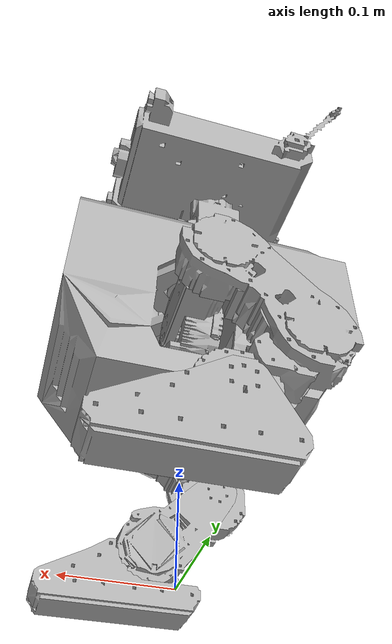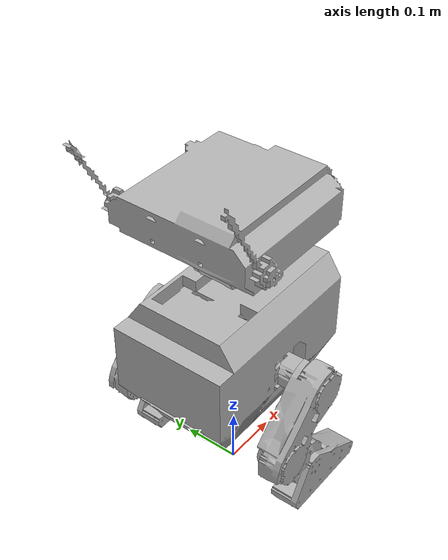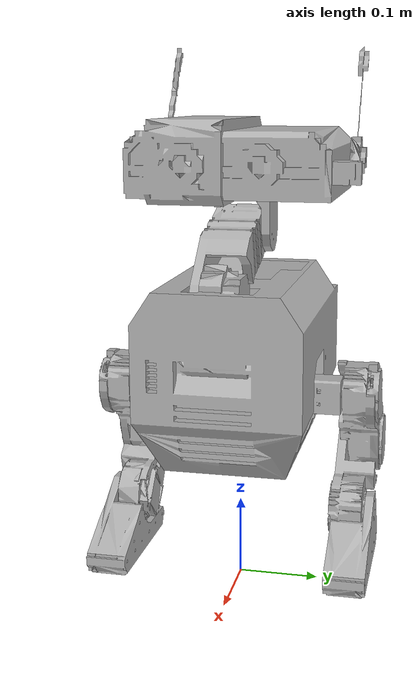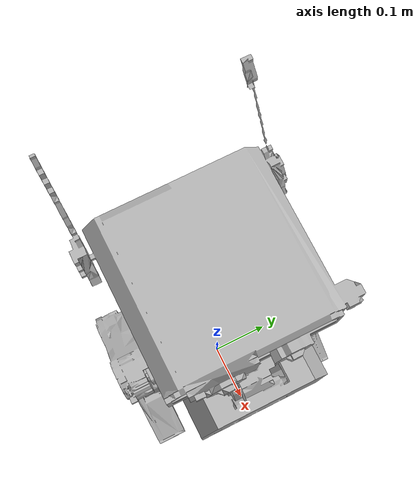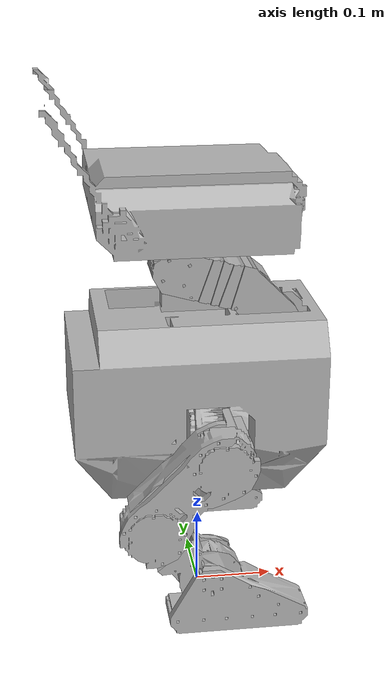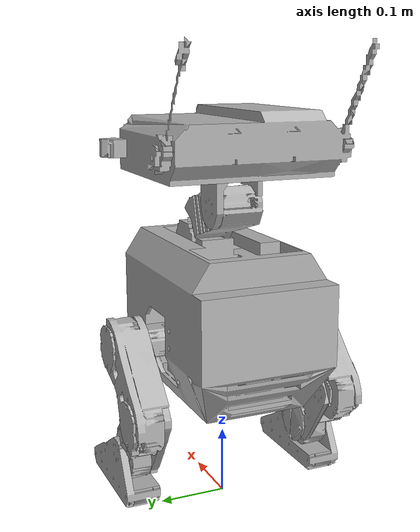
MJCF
<mujoco model="toto">
  <compiler angle="radian" meshdir="assets" autolimits="true" />

  <default>
    <default class="toto">
      <default class="visual">
        <geom group="2" type="mesh" density="0" material="silver" contype="0" conaffinity="0" />
      </default>
      <default class="collision">
        <geom type="capsule" rgba="1 0 0 .3" group="3" contype="1" conaffinity="1" />
      </default>
      <site group="5" rgba="1 0 0 1" />
    </default>
  </default>

  <asset>
    <material name="silver" rgba="0.7 0.7 0.7 1" />

    <mesh name="base_link_visual" file="base_link_visual.stl" />
    <mesh name="left_hip_yaw_link_visual" file="left_hip_yaw_link_visual.stl" />
    <mesh name="left_hip_roll_link_visual" file="left_hip_roll_link_visual.stl" />
    <mesh name="left_hip_pitch_link_visual" file="left_hip_pitch_link_visual.stl" />
    <mesh name="left_knee_pitch_link_visual" file="left_knee_pitch_link_visual.stl" />
    <mesh name="left_ankle_pitch_link_visual" file="left_ankle_pitch_link_visual.stl" />
    <mesh name="right_hip_yaw_link_visual" file="right_hip_yaw_link_visual.stl" />
    <mesh name="right_hip_roll_link_visual" file="right_hip_roll_link_visual.stl" />
    <mesh name="right_hip_pitch_link_visual" file="right_hip_pitch_link_visual.stl" />
    <mesh name="right_knee_pitch_link_visual" file="right_knee_pitch_link_visual.stl" />
    <mesh name="right_ankle_pitch_link_visual" file="right_ankle_pitch_link_visual.stl" />
    <mesh name="neck_2_link_visual" file="neck_2_link_visual.stl" />
    <mesh name="neck_1_link_visual" file="neck_1_link_visual.stl" />
    <mesh name="head_link_visual" file="head_link_visual.stl" />
    <material name="base_link_mat" rgba="0.7294 0.7412 0.7137 1" specular="0" />
    <material name="neck_2_link_mat" rgba="0.3333 0.3412 0.3255 1" specular="0" />
    <material name="neck_1_link_mat" rgba="0.7569 0.4902 0.0667 1" specular="0" />
    <material name="head_yaw_link_mat" rgba="0.7294 0.7412 0.7137 1" specular="0" />
    <material name="left_hip_yaw_link_mat" rgba="0.702 0.702 0.702 1" specular="0" />
    <material name="left_hip_roll_link_mat" rgba="0.7569 0.4902 0.0667 1" specular="0" />
    <material name="left_hip_pitch_link_mat" rgba="0.3333 0.3412 0.3255 1" specular="0" />
    <material name="left_knee_pitch_link_mat" rgba="0.7294 0.7412 0.7137 1" specular="0" />
    <material name="left_ankle_pitch_link_mat" rgba="0.3333 0.3412 0.3255 1" specular="0" />
    <material name="right_hip_yaw_link_mat" rgba="0.702 0.702 0.702 1" specular="0" />
    <material name="right_hip_roll_link_mat" rgba="0.7569 0.4902 0.0667 1" specular="0" />
    <material name="right_hip_pitch_link_mat" rgba="0.3333 0.3412 0.3255 1" specular="0" />
    <material name="right_knee_pitch_link_mat" rgba="0.7294 0.7412 0.7137 1" specular="0" />
    <material name="right_ankle_pitch_link_mat" rgba="0.3333 0.3412 0.3255 1" specular="0" />
  </asset>

  <worldbody>
    <!-- 添加地面和灯光 -->
    <light name="key_light" pos="-0 -3 4" dir="0 0.7 -1" diffuse="0.8 0.8 0.8" castshadow="true" />
    <light name="fill_light" pos="-3 2 3" dir="0.6 -0.4 -1" diffuse="0.35 0.35 0.35"
      castshadow="false" />
    <light name="spotlight" mode="targetbodycom" target="base_link" pos="0 -1 2" />

    <body name="base_link" pos="0 0 0.17" childclass="toto">
      <freejoint name="floating_base_joint" />
      <inertial pos="-0.00488 0 0.12124" mass="2.279" diaginertia="0.01381 0.04939 0.04675" />
      <geom class="visual" mesh="base_link_visual" quat="0.7071 0 0 0.7071" />
      <site name="imu" size="0.01" pos="-0.07834 0 0.0863" />

      <body name="neck_2_link" pos="0.09406 -0.0249 0.21124" euler="0 -0.5 0">
        <inertial pos="-0.05141 0 0.09253" mass="0.369" diaginertia="0.00081 0.00125 0.00066" />
        <geom class="visual" mesh="neck_2_link_visual" quat="0.7071 0 0 0.7071" />
        <body name="neck_1_link" pos="-0.0775 0.049 0.12134" euler="0 0.5 0">
          <inertial pos="-0.00024 0 0.05643" mass="0.336" diaginertia="0.00036 0.00032 0.00016" />
          <geom class="visual" mesh="neck_1_link_visual" quat="0.7071 0 0 0.7071" />
          <body name="head_yaw_link" pos="-0.00018 -0.02413 0.10083">
            <inertial pos="0.02149 0 -0.01691" mass="0.547" diaginertia="0.00271 0.00346 0.00563" />
            <geom class="visual" mesh="head_link_visual" quat="0.7071 0 0 0.7071" />
          </body>
        </body>
      </body>

      <body name="left_hip_yaw_link" pos="0.0109 0.04518 0.14309">
        <inertial pos="-0.01055 0 -0.05487" mass="0.397" diaginertia="0.00035 0.00031 0.00021" />
        <joint name="left_hip_yaw_link_joint" axis="0 0 1" range="-0.25 0.25" />
        <geom class="visual" mesh="left_hip_yaw_link_visual" quat="0.7071 0 0 0.7071" />
        <body name="left_hip_roll_link" pos="0.01284 0.00001 -0.05962">
          <inertial pos="-0.00656 0 -0.00065" mass="0.0263" diaginertia="0.00002 0.00001 0.00002" />
          <joint name="left_hip_roll_link_joint" axis="1 0 0" range="-0.52333 0.34889" />
          <geom class="visual" mesh="left_hip_roll_link_visual" quat="0.7071 0 0 0.7071" />
          <body name="left_hip_pitch_link" pos="-0.01527 0.08544 -0.00091">
            <inertial pos="-0.04484 0 -0.03898" mass="0.805" diaginertia="0.00140 0.00249 0.00136" />
            <joint name="left_hip_pitch_link_joint" axis="0 1 0" range="-1.83167 0.785" />
            <geom class="visual" mesh="left_hip_pitch_link_visual" quat="0.7071 0 0 0.7071" />
            <body name="left_knee_pitch_link" pos="-0.0852 0 -0.08514">
              <inertial pos="0.05821 0 -0.05894" mass="0.4" diaginertia="0.00030 0.00050 0.00032" />
              <joint name="left_knee_pitch_link_joint" axis="0 1 0" range="-0.52333 2.26778" />
              <geom class="visual" mesh="left_knee_pitch_link_visual" quat="0.7071 0 0 0.7071" />
              <body name="left_ankle_pitch_link" pos="0.07069 0.032 -0.0704">
                <inertial pos="0.03421 0 -0.04009" mass="0.1" diaginertia="0.00005 0.00020 0.00018" />
                <joint name="left_ankle_pitch_link_joint" axis="0 1 0" range="-1.74444 0.95944" />
                <geom class="visual" mesh="left_ankle_pitch_link_visual" quat="0.7071 0 0 0.7071" />
                <geom class="collision" name="left_foot_collision_1" size="0.005"
                  fromto="-0.039 -0.015364 -0.063569 0.109 -0.015364 -0.063569" />
                <geom class="collision" name="left_foot_collision_2" size="0.005"
                  fromto="-0.039 -0.019364 -0.063569 0.109 -0.019364 -0.063569" />
                <geom class="collision" name="left_foot_collision_3" size="0.005"
                  fromto="-0.039 -0.023364 -0.063569 0.109 -0.023364 -0.063569" />
                <geom class="collision" name="left_foot_collision_4" size="0.005"
                  fromto="-0.039 -0.027364 -0.063569 0.109 -0.027364 -0.063569" />
                <geom class="collision" name="left_foot_collision_5" size="0.005"
                  fromto="-0.039 -0.031364 -0.063569 0.109 -0.031364 -0.063569" />
                <geom class="collision" name="left_foot_collision_6" size="0.005"
                  fromto="-0.039 -0.033664 -0.063569 0.109 -0.033664 -0.063569" />
                <geom class="collision" name="left_foot_collision_7" size="0.005"
                  fromto="-0.039 -0.011364 -0.063569 0.109 -0.011364 -0.063569" />
                <geom class="collision" name="left_foot_collision_8" size="0.005"
                  fromto="-0.039 -0.007364 -0.063569 0.109 -0.007364 -0.063569" />
                <geom class="collision" name="left_foot_collision_9" size="0.005"
                  fromto="-0.039 -0.003364 -0.063569 0.109 -0.003364 -0.063569" />
                <geom class="collision" name="left_foot_collision_10" size="0.005"
                  fromto="-0.039 0.001364 -0.063569 0.109 0.001364 -0.063569" />
                <geom class="collision" name="left_foot_collision_11" size="0.005"
                  fromto="-0.039 0.003364 -0.063569 0.109 0.003364 -0.063569" />

                <site name="left_foot_site" rgba="1 0 0 1" pos="0 -0.02 -0.069" />

              </body>
            </body>
          </body>
        </body>
      </body>

      <body name="right_hip_yaw_link" pos="0.0109 -0.04518 0.14309">
        <inertial pos="-0.01055 0 -0.05487" mass="0.397" diaginertia="0.00035 0.00031 0.00021" />
        <joint name="right_hip_yaw_link_joint" axis="0 0 1" range="-0.25 0.25" />
        <geom class="visual" mesh="right_hip_yaw_link_visual" quat="0.7071 0 0 0.7071" />
        <body name="right_hip_roll_link" pos="0.01284 -0.00001 -0.05962">
          <inertial pos="-0.00656 0 -0.00065" mass="0.0263" diaginertia="0.00002 0.00001 0.00002" />
          <joint name="right_hip_roll_link_joint" axis="1 0 0" range="-0.34889 0.52333" />
          <geom class="visual" mesh="right_hip_roll_link_visual" quat="0.7071 0 0 0.7071" />
          <body name="right_hip_pitch_link" pos="-0.01527 -0.08544 -0.00091">
            <inertial pos="-0.04484 0 -0.03898" mass="0.805" diaginertia="0.00140 0.00249 0.00136" />
            <joint name="right_hip_pitch_link_joint" axis="0 1 0" range="-1.83167 0.785" />
            <geom class="visual" mesh="right_hip_pitch_link_visual" quat="0.7071 0 0 0.7071" />
            <body name="right_knee_pitch_link" pos="-0.0852 0 -0.08514">
              <inertial pos="0.05821 0 -0.05894" mass="0.4" diaginertia="0.00030 0.00050 0.00032" />
              <joint name="right_knee_pitch_link_joint" axis="0 1 0" range="-0.52333 2.26778" />
              <geom class="visual" mesh="right_knee_pitch_link_visual" quat="0.7071 0 0 0.7071" />
              <body name="right_ankle_pitch_link" pos="0.07069 -0.032 -0.0704">
                <inertial pos="0.03421 0 -0.04009" mass="0.1" diaginertia="0.00005 0.00020 0.00018" />
                <joint name="right_ankle_pitch_link_joint" axis="0 1 0" range="-1.74444 0.95944" />
                <geom class="visual" mesh="right_ankle_pitch_link_visual" quat="0.7071 0 0 0.7071" />
                <geom class="collision" name="right_foot_collision_1" size="0.005"
                  fromto="-0.039 0.015364 -0.063569 0.109 0.015364 -0.063569" />
                <geom class="collision" name="right_foot_collision_2" size="0.005"
                  fromto="-0.039 0.019364 -0.063569 0.109 0.019364 -0.063569" />
                <geom class="collision" name="right_foot_collision_3" size="0.005"
                  fromto="-0.039 0.023364 -0.063569 0.109 0.023364 -0.063569" />
                <geom class="collision" name="right_foot_collision_4" size="0.005"
                  fromto="-0.039 0.027364 -0.063569 0.109 0.027364 -0.063569" />
                <geom class="collision" name="right_foot_collision_5" size="0.005"
                  fromto="-0.039 0.031364 -0.063569 0.109 0.031364 -0.063569" />
                <geom class="collision" name="right_foot_collision_6" size="0.005"
                  fromto="-0.039 0.033664 -0.063569 0.109 0.033664 -0.063569" />
                <geom class="collision" name="right_foot_collision_7" size="0.005"
                  fromto="-0.039 0.011364 -0.063569 0.109 0.011364 -0.063569" />
                <geom class="collision" name="right_foot_collision_8" size="0.005"
                  fromto="-0.039 0.007364 -0.063569 0.109 0.007364 -0.063569" />
                <geom class="collision" name="right_foot_collision_9" size="0.005"
                  fromto="-0.039 0.003364 -0.063569 0.109 0.003364 -0.063569" />
                <geom class="collision" name="right_foot_collision_10" size="0.005"
                  fromto="-0.039 -0.001364 -0.063569 0.109 -0.001364 -0.063569" />
                <geom class="collision" name="right_foot_collision_11" size="0.005"
                  fromto="-0.039 -0.003364 -0.063569 0.109 -0.003364 -0.063569" />
                <site name="right_foot_site" rgba="1 0 0 1" pos="0 0.02 -0.069" />

              </body>
            </body>
          </body>
        </body>
      </body>
      <geom class="collision" name="base_link_collision" size="0.11"
        fromto="0.08 0 0.12 -0.09 0 0.12" />
    </body>
  </worldbody>
  <contact>
    <exclude body1="base_link" body2="left_hip_yaw_link" />
    <exclude body1="base_link" body2="right_hip_yaw_link" />
  </contact>
  <sensor>
    <gyro name="imu_ang_vel" site="imu" />
    <velocimeter name="imu_lin_vel" site="imu" />
    <accelerometer name="imu_lin_acc" site="imu" />
    <subtreeangmom name="root_angmom" body="base_link" />
  </sensor>
</mujoco>
